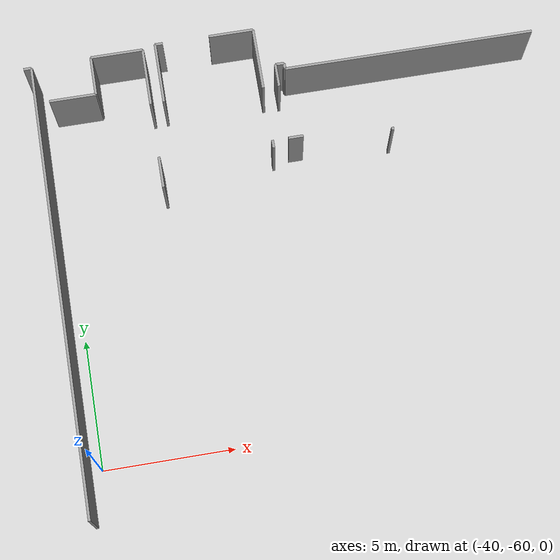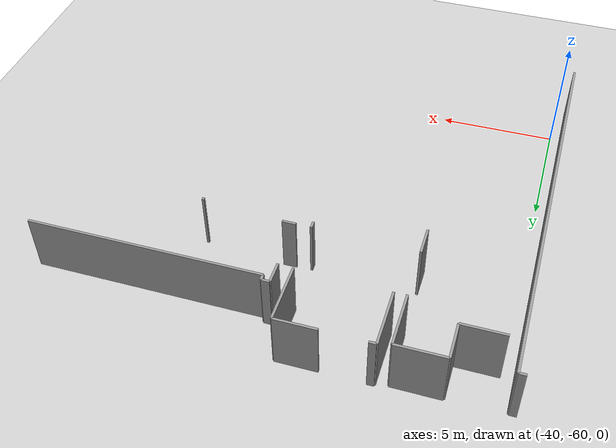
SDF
<sdf version="1.6">
 <world name="default">
  <model name="ground_plane">
   <static>1</static>
   <link name="link">
    <collision name="collision">
     <geometry><plane><normal>0 0 1</normal><size>100 100</size></plane></geometry>
     <surface><friction><ode><mu>100</mu><mu2>50</mu2></ode></friction></surface>
    </collision>
    <visual name="visual">
     <cast_shadows>0</cast_shadows>
     <geometry><plane><normal>0 0 1</normal><size>100 100</size></plane></geometry>
     <material>
      <script><uri>file://media/materials/scripts/gazebo.material</uri><name>Gazebo/Grey</name></script>
     </material>
    </visual>
   </link>
  </model>
  <model name="50036894">
   <static>1</static>
   <link name="Wall_38">
    <collision name="Wall_38_Collision">
     <geometry><box><size>0.300261841513 0.1 2.5</size></box></geometry>
     <pose>0.150130920756 0 1.25 0 0 0</pose>
    </collision>
    <visual name="Wall_38_Visual">
     <pose>0.150130920756 0 1.25 0 0 0</pose>
     <geometry><box><size>0.300261841513 0.1 2.5</size></box></geometry>
     <material>
      <script><uri>file://media/materials/scripts/gazebo.material</uri><name>Gazebo/Grey</name></script>
      <ambient>1 1 1 1</ambient>
     </material>
    </visual>
    <pose>82.0397010062 -111.870359921 0 0 0 0.0</pose>
   </link>
   <link name="Wall_39">
    <collision name="Wall_39_Collision">
     <geometry><box><size>17.5417329724 0.1 2.5</size></box></geometry>
     <pose>8.77086648619 0 1.25 0 0 0</pose>
    </collision>
    <visual name="Wall_39_Visual">
     <pose>8.77086648619 0 1.25 0 0 0</pose>
     <geometry><box><size>17.5417329724 0.1 2.5</size></box></geometry>
     <material>
      <script><uri>file://media/materials/scripts/gazebo.material</uri><name>Gazebo/Grey</name></script>
      <ambient>1 1 1 1</ambient>
     </material>
    </visual>
    <pose>82.3399628477 -111.870359921 0 0 0 -1.57079632679</pose>
   </link>
   <link name="Wall_140">
    <collision name="Wall_140_Collision">
     <geometry><box><size>2.41705710427 0.1 2.5</size></box></geometry>
     <pose>1.20852855214 0 1.25 0 0 0</pose>
    </collision>
    <visual name="Wall_140_Visual">
     <pose>1.20852855214 0 1.25 0 0 0</pose>
     <geometry><box><size>2.41705710427 0.1 2.5</size></box></geometry>
     <material>
      <script><uri>file://media/materials/scripts/gazebo.material</uri><name>Gazebo/Grey</name></script>
      <ambient>1 1 1 1</ambient>
     </material>
    </visual>
    <pose>87.1839674378 -114.083015806 0 0 0 1.57079632679</pose>
   </link>
   <link name="Wall_141">
    <collision name="Wall_141_Collision">
     <geometry><box><size>0.295189850947 0.1 2.5</size></box></geometry>
     <pose>0.147594925473 0 1.25 0 0 0</pose>
    </collision>
    <visual name="Wall_141_Visual">
     <pose>0.147594925473 0 1.25 0 0 0</pose>
     <geometry><box><size>0.295189850947 0.1 2.5</size></box></geometry>
     <material>
      <script><uri>file://media/materials/scripts/gazebo.material</uri><name>Gazebo/Grey</name></script>
      <ambient>1 1 1 1</ambient>
     </material>
    </visual>
    <pose>87.1839674378 -111.665958701 0 0 0 0.0</pose>
   </link>
   <link name="Wall_142">
    <collision name="Wall_142_Collision">
     <geometry><box><size>1.73411357455 0.1 2.5</size></box></geometry>
     <pose>0.867056787274 0 1.25 0 0 0</pose>
    </collision>
    <visual name="Wall_142_Visual">
     <pose>0.867056787274 0 1.25 0 0 0</pose>
     <geometry><box><size>1.73411357455 0.1 2.5</size></box></geometry>
     <material>
      <script><uri>file://media/materials/scripts/gazebo.material</uri><name>Gazebo/Grey</name></script>
      <ambient>1 1 1 1</ambient>
     </material>
    </visual>
    <pose>89.2931547147 -111.665958701 0 0 0 0.0</pose>
   </link>
   <link name="Wall_143">
    <collision name="Wall_143_Collision">
     <geometry><box><size>2.47234180144 0.1 2.5</size></box></geometry>
     <pose>1.23617090072 0 1.25 0 0 0</pose>
    </collision>
    <visual name="Wall_143_Visual">
     <pose>1.23617090072 0 1.25 0 0 0</pose>
     <geometry><box><size>2.47234180144 0.1 2.5</size></box></geometry>
     <material>
      <script><uri>file://media/materials/scripts/gazebo.material</uri><name>Gazebo/Grey</name></script>
      <ambient>1 1 1 1</ambient>
     </material>
    </visual>
    <pose>91.0272682893 -111.665958701 0 0 0 -1.57079632679</pose>
   </link>
   <link name="Wall_144">
    <collision name="Wall_144_Collision">
     <geometry><box><size>0.316745810853 0.1 2.5</size></box></geometry>
     <pose>0.158372905426 0 1.25 0 0 0</pose>
    </collision>
    <visual name="Wall_144_Visual">
     <pose>0.158372905426 0 1.25 0 0 0</pose>
     <geometry><box><size>0.316745810853 0.1 2.5</size></box></geometry>
     <material>
      <script><uri>file://media/materials/scripts/gazebo.material</uri><name>Gazebo/Grey</name></script>
      <ambient>1 1 1 1</ambient>
     </material>
    </visual>
    <pose>91.0272682893 -116.32255324 0 0 0 -1.57079632679</pose>
   </link>
   <link name="Wall_147">
    <collision name="Wall_147_Collision">
     <geometry><box><size>1.7972598571 0.1 2.5</size></box></geometry>
     <pose>0.898629928548 0 1.25 0 0 0</pose>
    </collision>
    <visual name="Wall_147_Visual">
     <pose>0.898629928548 0 1.25 0 0 0</pose>
     <geometry><box><size>1.7972598571 0.1 2.5</size></box></geometry>
     <material>
      <script><uri>file://media/materials/scripts/gazebo.material</uri><name>Gazebo/Grey</name></script>
      <ambient>1 1 1 1</ambient>
     </material>
    </visual>
    <pose>82.8603490798 -113.354424361 0 0 0 0.0</pose>
   </link>
   <link name="Wall_148">
    <collision name="Wall_148_Collision">
     <geometry><box><size>1.55076111558 0.1 2.5</size></box></geometry>
     <pose>0.775380557792 0 1.25 0 0 0</pose>
    </collision>
    <visual name="Wall_148_Visual">
     <pose>0.775380557792 0 1.25 0 0 0</pose>
     <geometry><box><size>1.55076111558 0.1 2.5</size></box></geometry>
     <material>
      <script><uri>file://media/materials/scripts/gazebo.material</uri><name>Gazebo/Grey</name></script>
      <ambient>1 1 1 1</ambient>
     </material>
    </visual>
    <pose>84.6576089368 -113.354424361 0 0 0 1.57079632679</pose>
   </link>
   <link name="Wall_149">
    <collision name="Wall_149_Collision">
     <geometry><box><size>2.01763784719 0.1 2.5</size></box></geometry>
     <pose>1.0088189236 0 1.25 0 0 0</pose>
    </collision>
    <visual name="Wall_149_Visual">
     <pose>1.0088189236 0 1.25 0 0 0</pose>
     <geometry><box><size>2.01763784719 0.1 2.5</size></box></geometry>
     <material>
      <script><uri>file://media/materials/scripts/gazebo.material</uri><name>Gazebo/Grey</name></script>
      <ambient>1 1 1 1</ambient>
     </material>
    </visual>
    <pose>84.6576089368 -111.803663245 0 0 0 0.0</pose>
   </link>
   <link name="Wall_150">
    <collision name="Wall_150_Collision">
     <geometry><box><size>2.30116211984 0.1 2.5</size></box></geometry>
     <pose>1.15058105992 0 1.25 0 0 0</pose>
    </collision>
    <visual name="Wall_150_Visual">
     <pose>1.15058105992 0 1.25 0 0 0</pose>
     <geometry><box><size>2.30116211984 0.1 2.5</size></box></geometry>
     <material>
      <script><uri>file://media/materials/scripts/gazebo.material</uri><name>Gazebo/Grey</name></script>
      <ambient>1 1 1 1</ambient>
     </material>
    </visual>
    <pose>86.675246784 -111.803663245 0 0 0 -1.57079632679</pose>
   </link>
   <link name="Wall_151">
    <collision name="Wall_151_Collision">
     <geometry><box><size>1.22285692549 0.1 2.5</size></box></geometry>
     <pose>0.611428462743 0 1.25 0 0 0</pose>
    </collision>
    <visual name="Wall_151_Visual">
     <pose>0.611428462743 0 1.25 0 0 0</pose>
     <geometry><box><size>1.22285692549 0.1 2.5</size></box></geometry>
     <material>
      <script><uri>file://media/materials/scripts/gazebo.material</uri><name>Gazebo/Grey</name></script>
      <ambient>1 1 1 1</ambient>
     </material>
    </visual>
    <pose>86.675246784 -116.289585301 0 0 0 -1.57079632679</pose>
   </link>
   <link name="Wall_183">
    <collision name="Wall_183_Collision">
     <geometry><box><size>0.338555370287 0.1 2.5</size></box></geometry>
     <pose>0.169277685144 0 1.25 0 0 0</pose>
    </collision>
    <visual name="Wall_183_Visual">
     <pose>0.169277685144 0 1.25 0 0 0</pose>
     <geometry><box><size>0.338555370287 0.1 2.5</size></box></geometry>
     <material>
      <script><uri>file://media/materials/scripts/gazebo.material</uri><name>Gazebo/Grey</name></script>
      <ambient>1 1 1 1</ambient>
     </material>
    </visual>
    <pose>91.6468119369 -113.259578137 0 0 0 0.0</pose>
   </link>
   <link name="Wall_184">
    <collision name="Wall_184_Collision">
     <geometry><box><size>0.238383556607 0.1 2.5</size></box></geometry>
     <pose>0.119191778303 0 1.25 0 0 0</pose>
    </collision>
    <visual name="Wall_184_Visual">
     <pose>0.119191778303 0 1.25 0 0 0</pose>
     <geometry><box><size>0.238383556607 0.1 2.5</size></box></geometry>
     <material>
      <script><uri>file://media/materials/scripts/gazebo.material</uri><name>Gazebo/Grey</name></script>
      <ambient>1 1 1 1</ambient>
     </material>
    </visual>
    <pose>91.9853673072 -113.259578137 0 0 0 -1.57079632679</pose>
   </link>
   <link name="Wall_185">
    <collision name="Wall_185_Collision">
     <geometry><box><size>9.71286193408 0.1 2.5</size></box></geometry>
     <pose>4.85643096704 0 1.25 0 0 0</pose>
    </collision>
    <visual name="Wall_185_Visual">
     <pose>4.85643096704 0 1.25 0 0 0</pose>
     <geometry><box><size>9.71286193408 0.1 2.5</size></box></geometry>
     <material>
      <script><uri>file://media/materials/scripts/gazebo.material</uri><name>Gazebo/Grey</name></script>
      <ambient>1 1 1 1</ambient>
     </material>
    </visual>
    <pose>91.9853673072 -113.497961694 0 0 0 0.0</pose>
   </link>
   <link name="Wall_188">
    <collision name="Wall_188_Collision">
     <geometry><box><size>0.110569394341 0.1 2.5</size></box></geometry>
     <pose>0.0552846971705 0 1.25 0 0 0</pose>
    </collision>
    <visual name="Wall_188_Visual">
     <pose>0.0552846971705 0 1.25 0 0 0</pose>
     <geometry><box><size>0.110569394341 0.1 2.5</size></box></geometry>
     <material>
      <script><uri>file://media/materials/scripts/gazebo.material</uri><name>Gazebo/Grey</name></script>
      <ambient>1 1 1 1</ambient>
     </material>
    </visual>
    <pose>95.6202093464 -116.547749621 0 0 0 -1.57079632679</pose>
   </link>
   <link name="Wall_195">
    <collision name="Wall_195_Collision">
     <geometry><box><size>0.570091739629 0.1 2.5</size></box></geometry>
     <pose>0.285045869815 0 1.25 0 0 0</pose>
    </collision>
    <visual name="Wall_195_Visual">
     <pose>0.285045869815 0 1.25 0 0 0</pose>
     <geometry><box><size>0.570091739629 0.1 2.5</size></box></geometry>
     <material>
      <script><uri>file://media/materials/scripts/gazebo.material</uri><name>Gazebo/Grey</name></script>
      <ambient>1 1 1 1</ambient>
     </material>
    </visual>
    <pose>92.2146212808 -116.339544408 0 0 0 3.14159265359</pose>
   </link>
   <link name="Wall_196">
    <collision name="Wall_196_Collision">
     <geometry><box><size>0.910425167552 0.1 2.5</size></box></geometry>
     <pose>0.455212583776 0 1.25 0 0 0</pose>
    </collision>
    <visual name="Wall_196_Visual">
     <pose>0.455212583776 0 1.25 0 0 0</pose>
     <geometry><box><size>0.910425167552 0.1 2.5</size></box></geometry>
     <material>
      <script><uri>file://media/materials/scripts/gazebo.material</uri><name>Gazebo/Grey</name></script>
      <ambient>1 1 1 1</ambient>
     </material>
    </visual>
    <pose>91.6445295412 -114.170000444 0 0 0 1.56828936826</pose>
   </link>
   <pose>-122.8 67.3347215794 0 0 0 0</pose>
  </model>
 </world>
</sdf>
